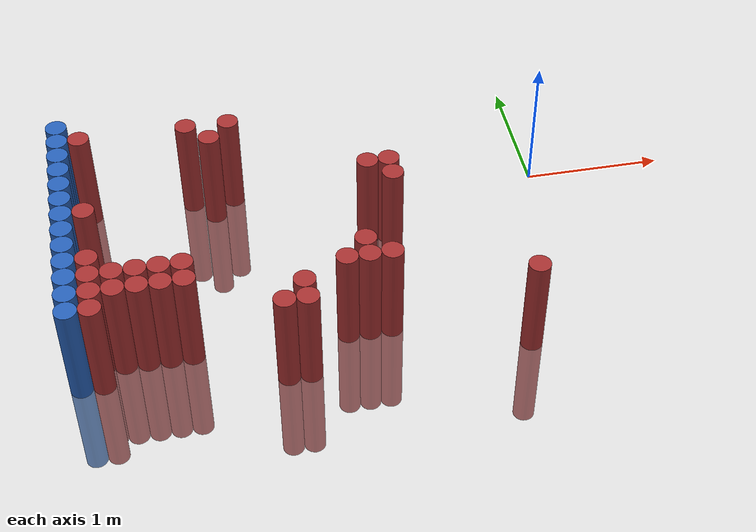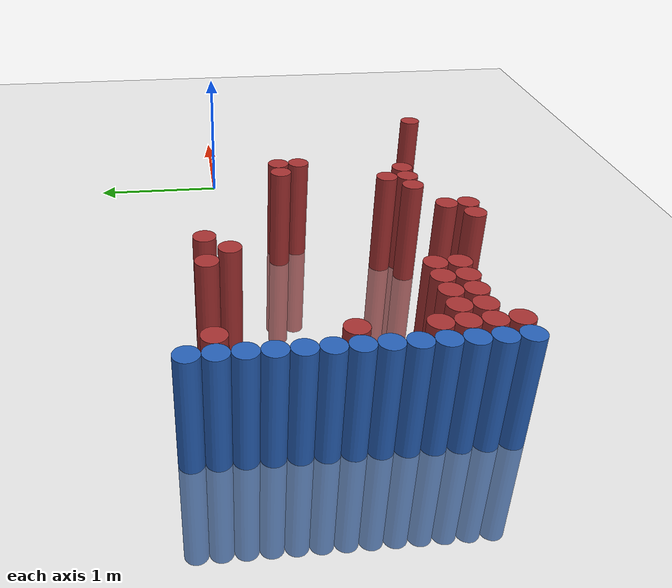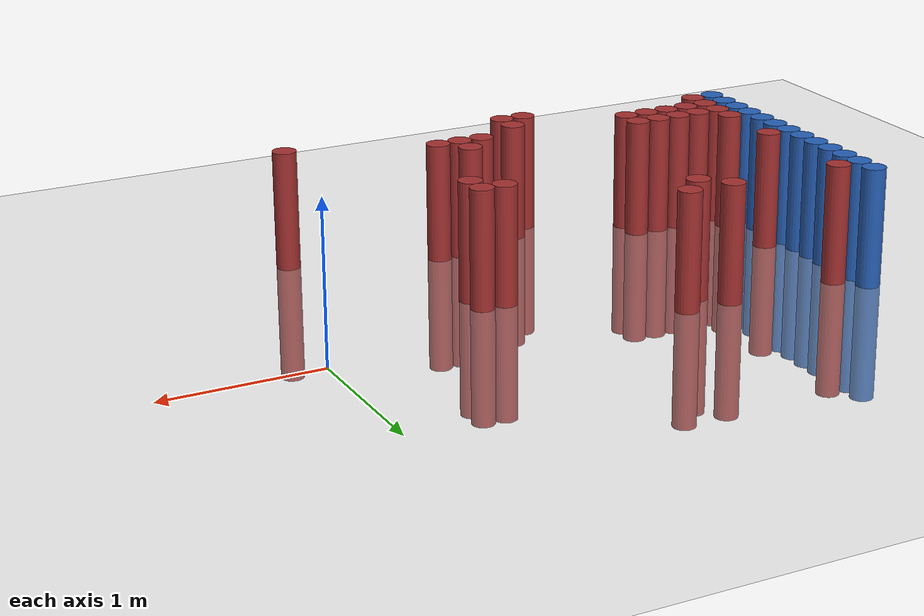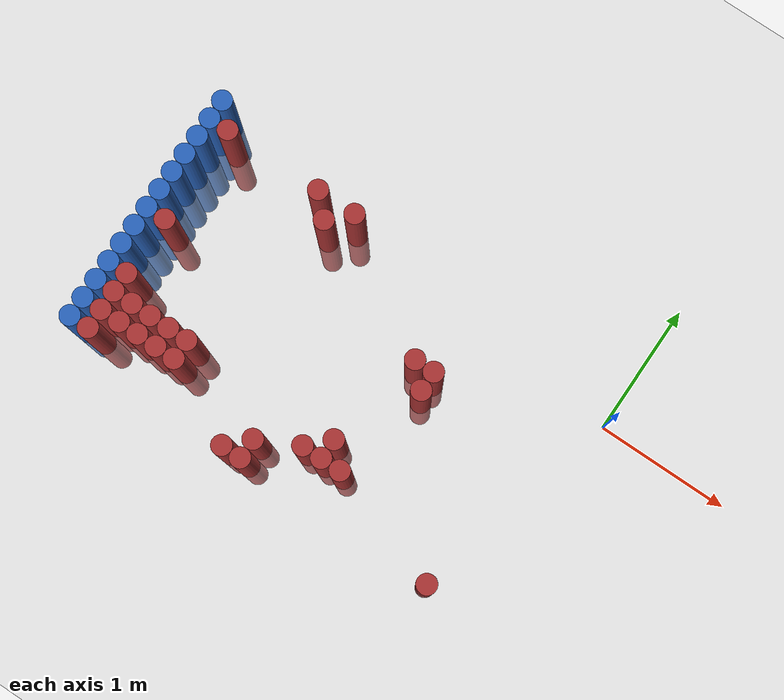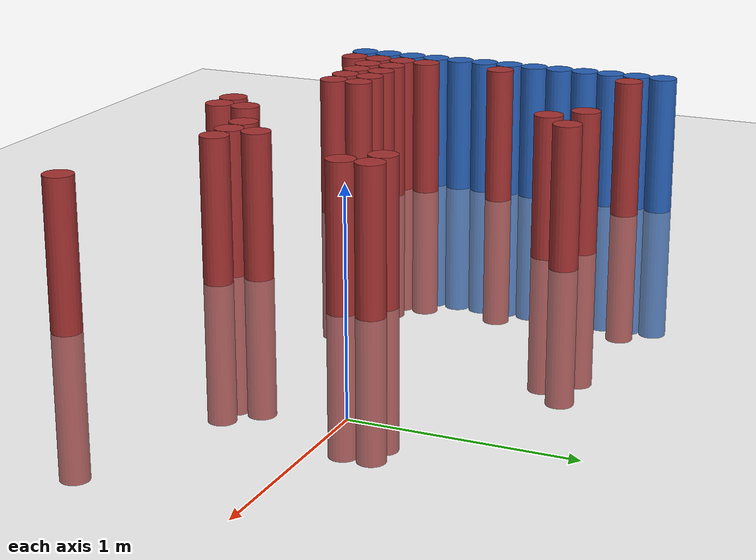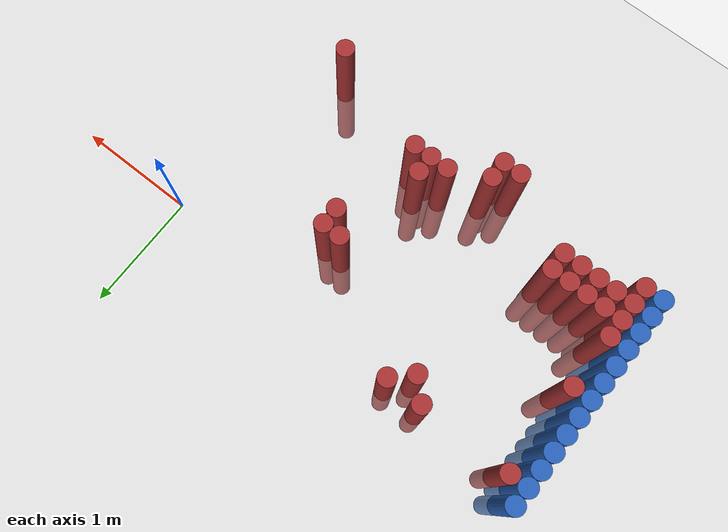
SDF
<sdf version="1.6">
 <world name="default">
  <model name="ground_plane">
   <static>1</static>
   <link name="link">
    <collision name="collision">
     <geometry><plane><normal>0 0 1</normal><size>100 100</size></plane></geometry>
     <surface><friction><ode><mu>100</mu><mu2>50</mu2></ode></friction></surface>
    </collision>
    <visual name="visual">
     <cast_shadows>0</cast_shadows>
     <geometry><plane><normal>0 0 1</normal><size>100 100</size></plane></geometry>
     <material>
      <script><uri>file://media/materials/scripts/gazebo.material</uri><name>Gazebo/Grey</name></script>
     </material>
    </visual>
   </link>
  </model>
  <model name="unit_cylinder_95">
   <static>1</static>
   <pose>-3.425000 -1.475000 0.000000 0.000000 0.000000 0.000000</pose>
   <link name="link">
    <inertial>
     <mass>1</mass>
     <inertia><ixx>0.145833</ixx><ixy>0</ixy><ixz>0</ixz><iyy>0.145833</iyy><iyz>0</iyz><izz>0.125</izz></inertia>
    </inertial>
    <collision name="collision">
     <geometry><cylinder><radius>0.075000</radius><length>1.5</length></cylinder></geometry>
    </collision>
    <visual name="visual">
     <geometry><cylinder><radius>0.075000</radius><length>1.5</length></cylinder></geometry>
     <material>
      <ambient>0.152000 0.379000 0.720000 1</ambient>
      <diffuse>0.152000 0.379000 0.720000 1</diffuse>
     </material>
     <material>
      <script><name>Gazebo/Grey</name><uri>file://media/materials/scripts/gazebo.material</uri></script>
     </material>
    </visual>
   </link>
  </model>
  <model name="unit_cylinder_97">
   <static>1</static>
   <pose>-3.425000 -1.325000 0.000000 0.000000 0.000000 0.000000</pose>
   <link name="link">
    <inertial>
     <mass>1</mass>
     <inertia><ixx>0.145833</ixx><ixy>0</ixy><ixz>0</ixz><iyy>0.145833</iyy><iyz>0</iyz><izz>0.125</izz></inertia>
    </inertial>
    <collision name="collision">
     <geometry><cylinder><radius>0.075000</radius><length>1.5</length></cylinder></geometry>
    </collision>
    <visual name="visual">
     <geometry><cylinder><radius>0.075000</radius><length>1.5</length></cylinder></geometry>
     <material>
      <ambient>0.152000 0.379000 0.720000 1</ambient>
      <diffuse>0.152000 0.379000 0.720000 1</diffuse>
     </material>
     <material>
      <script><name>Gazebo/Grey</name><uri>file://media/materials/scripts/gazebo.material</uri></script>
     </material>
    </visual>
   </link>
  </model>
  <model name="unit_cylinder_99">
   <static>1</static>
   <pose>-3.425000 -1.175000 0.000000 0.000000 0.000000 0.000000</pose>
   <link name="link">
    <inertial>
     <mass>1</mass>
     <inertia><ixx>0.145833</ixx><ixy>0</ixy><ixz>0</ixz><iyy>0.145833</iyy><iyz>0</iyz><izz>0.125</izz></inertia>
    </inertial>
    <collision name="collision">
     <geometry><cylinder><radius>0.075000</radius><length>1.5</length></cylinder></geometry>
    </collision>
    <visual name="visual">
     <geometry><cylinder><radius>0.075000</radius><length>1.5</length></cylinder></geometry>
     <material>
      <ambient>0.152000 0.379000 0.720000 1</ambient>
      <diffuse>0.152000 0.379000 0.720000 1</diffuse>
     </material>
     <material>
      <script><name>Gazebo/Grey</name><uri>file://media/materials/scripts/gazebo.material</uri></script>
     </material>
    </visual>
   </link>
  </model>
  <model name="unit_cylinder_101">
   <static>1</static>
   <pose>-3.425000 -1.025000 0.000000 0.000000 0.000000 0.000000</pose>
   <link name="link">
    <inertial>
     <mass>1</mass>
     <inertia><ixx>0.145833</ixx><ixy>0</ixy><ixz>0</ixz><iyy>0.145833</iyy><iyz>0</iyz><izz>0.125</izz></inertia>
    </inertial>
    <collision name="collision">
     <geometry><cylinder><radius>0.075000</radius><length>1.5</length></cylinder></geometry>
    </collision>
    <visual name="visual">
     <geometry><cylinder><radius>0.075000</radius><length>1.5</length></cylinder></geometry>
     <material>
      <ambient>0.152000 0.379000 0.720000 1</ambient>
      <diffuse>0.152000 0.379000 0.720000 1</diffuse>
     </material>
     <material>
      <script><name>Gazebo/Grey</name><uri>file://media/materials/scripts/gazebo.material</uri></script>
     </material>
    </visual>
   </link>
  </model>
  <model name="unit_cylinder_103">
   <static>1</static>
   <pose>-3.425000 -0.875000 0.000000 0.000000 0.000000 0.000000</pose>
   <link name="link">
    <inertial>
     <mass>1</mass>
     <inertia><ixx>0.145833</ixx><ixy>0</ixy><ixz>0</ixz><iyy>0.145833</iyy><iyz>0</iyz><izz>0.125</izz></inertia>
    </inertial>
    <collision name="collision">
     <geometry><cylinder><radius>0.075000</radius><length>1.5</length></cylinder></geometry>
    </collision>
    <visual name="visual">
     <geometry><cylinder><radius>0.075000</radius><length>1.5</length></cylinder></geometry>
     <material>
      <ambient>0.152000 0.379000 0.720000 1</ambient>
      <diffuse>0.152000 0.379000 0.720000 1</diffuse>
     </material>
     <material>
      <script><name>Gazebo/Grey</name><uri>file://media/materials/scripts/gazebo.material</uri></script>
     </material>
    </visual>
   </link>
  </model>
  <model name="unit_cylinder_105">
   <static>1</static>
   <pose>-3.425000 -0.725000 0.000000 0.000000 0.000000 0.000000</pose>
   <link name="link">
    <inertial>
     <mass>1</mass>
     <inertia><ixx>0.145833</ixx><ixy>0</ixy><ixz>0</ixz><iyy>0.145833</iyy><iyz>0</iyz><izz>0.125</izz></inertia>
    </inertial>
    <collision name="collision">
     <geometry><cylinder><radius>0.075000</radius><length>1.5</length></cylinder></geometry>
    </collision>
    <visual name="visual">
     <geometry><cylinder><radius>0.075000</radius><length>1.5</length></cylinder></geometry>
     <material>
      <ambient>0.152000 0.379000 0.720000 1</ambient>
      <diffuse>0.152000 0.379000 0.720000 1</diffuse>
     </material>
     <material>
      <script><name>Gazebo/Grey</name><uri>file://media/materials/scripts/gazebo.material</uri></script>
     </material>
    </visual>
   </link>
  </model>
  <model name="unit_cylinder_107">
   <static>1</static>
   <pose>-3.425000 -0.575000 0.000000 0.000000 0.000000 0.000000</pose>
   <link name="link">
    <inertial>
     <mass>1</mass>
     <inertia><ixx>0.145833</ixx><ixy>0</ixy><ixz>0</ixz><iyy>0.145833</iyy><iyz>0</iyz><izz>0.125</izz></inertia>
    </inertial>
    <collision name="collision">
     <geometry><cylinder><radius>0.075000</radius><length>1.5</length></cylinder></geometry>
    </collision>
    <visual name="visual">
     <geometry><cylinder><radius>0.075000</radius><length>1.5</length></cylinder></geometry>
     <material>
      <ambient>0.152000 0.379000 0.720000 1</ambient>
      <diffuse>0.152000 0.379000 0.720000 1</diffuse>
     </material>
     <material>
      <script><name>Gazebo/Grey</name><uri>file://media/materials/scripts/gazebo.material</uri></script>
     </material>
    </visual>
   </link>
  </model>
  <model name="unit_cylinder_109">
   <static>1</static>
   <pose>-3.425000 -0.425000 0.000000 0.000000 0.000000 0.000000</pose>
   <link name="link">
    <inertial>
     <mass>1</mass>
     <inertia><ixx>0.145833</ixx><ixy>0</ixy><ixz>0</ixz><iyy>0.145833</iyy><iyz>0</iyz><izz>0.125</izz></inertia>
    </inertial>
    <collision name="collision">
     <geometry><cylinder><radius>0.075000</radius><length>1.5</length></cylinder></geometry>
    </collision>
    <visual name="visual">
     <geometry><cylinder><radius>0.075000</radius><length>1.5</length></cylinder></geometry>
     <material>
      <ambient>0.152000 0.379000 0.720000 1</ambient>
      <diffuse>0.152000 0.379000 0.720000 1</diffuse>
     </material>
     <material>
      <script><name>Gazebo/Grey</name><uri>file://media/materials/scripts/gazebo.material</uri></script>
     </material>
    </visual>
   </link>
  </model>
  <model name="unit_cylinder_111">
   <static>1</static>
   <pose>-3.425000 -0.275000 0.000000 0.000000 0.000000 0.000000</pose>
   <link name="link">
    <inertial>
     <mass>1</mass>
     <inertia><ixx>0.145833</ixx><ixy>0</ixy><ixz>0</ixz><iyy>0.145833</iyy><iyz>0</iyz><izz>0.125</izz></inertia>
    </inertial>
    <collision name="collision">
     <geometry><cylinder><radius>0.075000</radius><length>1.5</length></cylinder></geometry>
    </collision>
    <visual name="visual">
     <geometry><cylinder><radius>0.075000</radius><length>1.5</length></cylinder></geometry>
     <material>
      <ambient>0.152000 0.379000 0.720000 1</ambient>
      <diffuse>0.152000 0.379000 0.720000 1</diffuse>
     </material>
     <material>
      <script><name>Gazebo/Grey</name><uri>file://media/materials/scripts/gazebo.material</uri></script>
     </material>
    </visual>
   </link>
  </model>
  <model name="unit_cylinder_113">
   <static>1</static>
   <pose>-3.425000 -0.125000 0.000000 0.000000 0.000000 0.000000</pose>
   <link name="link">
    <inertial>
     <mass>1</mass>
     <inertia><ixx>0.145833</ixx><ixy>0</ixy><ixz>0</ixz><iyy>0.145833</iyy><iyz>0</iyz><izz>0.125</izz></inertia>
    </inertial>
    <collision name="collision">
     <geometry><cylinder><radius>0.075000</radius><length>1.5</length></cylinder></geometry>
    </collision>
    <visual name="visual">
     <geometry><cylinder><radius>0.075000</radius><length>1.5</length></cylinder></geometry>
     <material>
      <ambient>0.152000 0.379000 0.720000 1</ambient>
      <diffuse>0.152000 0.379000 0.720000 1</diffuse>
     </material>
     <material>
      <script><name>Gazebo/Grey</name><uri>file://media/materials/scripts/gazebo.material</uri></script>
     </material>
    </visual>
   </link>
  </model>
  <model name="unit_cylinder_115">
   <static>1</static>
   <pose>-3.425000 0.025000 0.000000 0.000000 0.000000 0.000000</pose>
   <link name="link">
    <inertial>
     <mass>1</mass>
     <inertia><ixx>0.145833</ixx><ixy>0</ixy><ixz>0</ixz><iyy>0.145833</iyy><iyz>0</iyz><izz>0.125</izz></inertia>
    </inertial>
    <collision name="collision">
     <geometry><cylinder><radius>0.075000</radius><length>1.5</length></cylinder></geometry>
    </collision>
    <visual name="visual">
     <geometry><cylinder><radius>0.075000</radius><length>1.5</length></cylinder></geometry>
     <material>
      <ambient>0.152000 0.379000 0.720000 1</ambient>
      <diffuse>0.152000 0.379000 0.720000 1</diffuse>
     </material>
     <material>
      <script><name>Gazebo/Grey</name><uri>file://media/materials/scripts/gazebo.material</uri></script>
     </material>
    </visual>
   </link>
  </model>
  <model name="unit_cylinder_117">
   <static>1</static>
   <pose>-3.425000 0.175000 0.000000 0.000000 0.000000 0.000000</pose>
   <link name="link">
    <inertial>
     <mass>1</mass>
     <inertia><ixx>0.145833</ixx><ixy>0</ixy><ixz>0</ixz><iyy>0.145833</iyy><iyz>0</iyz><izz>0.125</izz></inertia>
    </inertial>
    <collision name="collision">
     <geometry><cylinder><radius>0.075000</radius><length>1.5</length></cylinder></geometry>
    </collision>
    <visual name="visual">
     <geometry><cylinder><radius>0.075000</radius><length>1.5</length></cylinder></geometry>
     <material>
      <ambient>0.152000 0.379000 0.720000 1</ambient>
      <diffuse>0.152000 0.379000 0.720000 1</diffuse>
     </material>
     <material>
      <script><name>Gazebo/Grey</name><uri>file://media/materials/scripts/gazebo.material</uri></script>
     </material>
    </visual>
   </link>
  </model>
  <model name="unit_cylinder_119">
   <static>1</static>
   <pose>-3.425000 0.325000 0.000000 0.000000 0.000000 0.000000</pose>
   <link name="link">
    <inertial>
     <mass>1</mass>
     <inertia><ixx>0.145833</ixx><ixy>0</ixy><ixz>0</ixz><iyy>0.145833</iyy><iyz>0</iyz><izz>0.125</izz></inertia>
    </inertial>
    <collision name="collision">
     <geometry><cylinder><radius>0.075000</radius><length>1.5</length></cylinder></geometry>
    </collision>
    <visual name="visual">
     <geometry><cylinder><radius>0.075000</radius><length>1.5</length></cylinder></geometry>
     <material>
      <ambient>0.152000 0.379000 0.720000 1</ambient>
      <diffuse>0.152000 0.379000 0.720000 1</diffuse>
     </material>
     <material>
      <script><name>Gazebo/Grey</name><uri>file://media/materials/scripts/gazebo.material</uri></script>
     </material>
    </visual>
   </link>
  </model>
  <model name="unit_cylinder_211">
   <static>1</static>
   <pose>-3.425000 -1.475000 0.000000 0.000000 0.000000 0.000000</pose>
   <link name="link">
    <inertial>
     <mass>1</mass>
     <inertia><ixx>0.145833</ixx><ixy>0</ixy><ixz>0</ixz><iyy>0.145833</iyy><iyz>0</iyz><izz>0.125</izz></inertia>
    </inertial>
    <collision name="collision">
     <geometry><cylinder><radius>0.075000</radius><length>1.5</length></cylinder></geometry>
    </collision>
    <visual name="visual">
     <geometry><cylinder><radius>0.075000</radius><length>1.5</length></cylinder></geometry>
     <material>
      <ambient>0.152000 0.379000 0.720000 1</ambient>
      <diffuse>0.152000 0.379000 0.720000 1</diffuse>
     </material>
     <material>
      <script><name>Gazebo/Grey</name><uri>file://media/materials/scripts/gazebo.material</uri></script>
     </material>
    </visual>
   </link>
  </model>
  <model name="unit_cylinder_212">
   <static>1</static>
   <pose>-3.425000 -1.325000 0.000000 0.000000 0.000000 0.000000</pose>
   <link name="link">
    <inertial>
     <mass>1</mass>
     <inertia><ixx>0.145833</ixx><ixy>0</ixy><ixz>0</ixz><iyy>0.145833</iyy><iyz>0</iyz><izz>0.125</izz></inertia>
    </inertial>
    <collision name="collision">
     <geometry><cylinder><radius>0.075000</radius><length>1.5</length></cylinder></geometry>
    </collision>
    <visual name="visual">
     <geometry><cylinder><radius>0.075000</radius><length>1.5</length></cylinder></geometry>
     <material>
      <ambient>0.152000 0.379000 0.720000 1</ambient>
      <diffuse>0.152000 0.379000 0.720000 1</diffuse>
     </material>
     <material>
      <script><name>Gazebo/Grey</name><uri>file://media/materials/scripts/gazebo.material</uri></script>
     </material>
    </visual>
   </link>
  </model>
  <model name="unit_cylinder_213">
   <static>1</static>
   <pose>-3.425000 -1.175000 0.000000 0.000000 0.000000 0.000000</pose>
   <link name="link">
    <inertial>
     <mass>1</mass>
     <inertia><ixx>0.145833</ixx><ixy>0</ixy><ixz>0</ixz><iyy>0.145833</iyy><iyz>0</iyz><izz>0.125</izz></inertia>
    </inertial>
    <collision name="collision">
     <geometry><cylinder><radius>0.075000</radius><length>1.5</length></cylinder></geometry>
    </collision>
    <visual name="visual">
     <geometry><cylinder><radius>0.075000</radius><length>1.5</length></cylinder></geometry>
     <material>
      <ambient>0.152000 0.379000 0.720000 1</ambient>
      <diffuse>0.152000 0.379000 0.720000 1</diffuse>
     </material>
     <material>
      <script><name>Gazebo/Grey</name><uri>file://media/materials/scripts/gazebo.material</uri></script>
     </material>
    </visual>
   </link>
  </model>
  <model name="unit_cylinder_214">
   <static>1</static>
   <pose>-3.425000 -1.025000 0.000000 0.000000 0.000000 0.000000</pose>
   <link name="link">
    <inertial>
     <mass>1</mass>
     <inertia><ixx>0.145833</ixx><ixy>0</ixy><ixz>0</ixz><iyy>0.145833</iyy><iyz>0</iyz><izz>0.125</izz></inertia>
    </inertial>
    <collision name="collision">
     <geometry><cylinder><radius>0.075000</radius><length>1.5</length></cylinder></geometry>
    </collision>
    <visual name="visual">
     <geometry><cylinder><radius>0.075000</radius><length>1.5</length></cylinder></geometry>
     <material>
      <ambient>0.152000 0.379000 0.720000 1</ambient>
      <diffuse>0.152000 0.379000 0.720000 1</diffuse>
     </material>
     <material>
      <script><name>Gazebo/Grey</name><uri>file://media/materials/scripts/gazebo.material</uri></script>
     </material>
    </visual>
   </link>
  </model>
  <model name="unit_cylinder_215">
   <static>1</static>
   <pose>-3.425000 -0.875000 0.000000 0.000000 0.000000 0.000000</pose>
   <link name="link">
    <inertial>
     <mass>1</mass>
     <inertia><ixx>0.145833</ixx><ixy>0</ixy><ixz>0</ixz><iyy>0.145833</iyy><iyz>0</iyz><izz>0.125</izz></inertia>
    </inertial>
    <collision name="collision">
     <geometry><cylinder><radius>0.075000</radius><length>1.5</length></cylinder></geometry>
    </collision>
    <visual name="visual">
     <geometry><cylinder><radius>0.075000</radius><length>1.5</length></cylinder></geometry>
     <material>
      <ambient>0.152000 0.379000 0.720000 1</ambient>
      <diffuse>0.152000 0.379000 0.720000 1</diffuse>
     </material>
     <material>
      <script><name>Gazebo/Grey</name><uri>file://media/materials/scripts/gazebo.material</uri></script>
     </material>
    </visual>
   </link>
  </model>
  <model name="unit_cylinder_216">
   <static>1</static>
   <pose>-3.425000 -0.725000 0.000000 0.000000 0.000000 0.000000</pose>
   <link name="link">
    <inertial>
     <mass>1</mass>
     <inertia><ixx>0.145833</ixx><ixy>0</ixy><ixz>0</ixz><iyy>0.145833</iyy><iyz>0</iyz><izz>0.125</izz></inertia>
    </inertial>
    <collision name="collision">
     <geometry><cylinder><radius>0.075000</radius><length>1.5</length></cylinder></geometry>
    </collision>
    <visual name="visual">
     <geometry><cylinder><radius>0.075000</radius><length>1.5</length></cylinder></geometry>
     <material>
      <ambient>0.152000 0.379000 0.720000 1</ambient>
      <diffuse>0.152000 0.379000 0.720000 1</diffuse>
     </material>
     <material>
      <script><name>Gazebo/Grey</name><uri>file://media/materials/scripts/gazebo.material</uri></script>
     </material>
    </visual>
   </link>
  </model>
  <model name="unit_cylinder_217">
   <static>1</static>
   <pose>-3.425000 -0.575000 0.000000 0.000000 0.000000 0.000000</pose>
   <link name="link">
    <inertial>
     <mass>1</mass>
     <inertia><ixx>0.145833</ixx><ixy>0</ixy><ixz>0</ixz><iyy>0.145833</iyy><iyz>0</iyz><izz>0.125</izz></inertia>
    </inertial>
    <collision name="collision">
     <geometry><cylinder><radius>0.075000</radius><length>1.5</length></cylinder></geometry>
    </collision>
    <visual name="visual">
     <geometry><cylinder><radius>0.075000</radius><length>1.5</length></cylinder></geometry>
     <material>
      <ambient>0.152000 0.379000 0.720000 1</ambient>
      <diffuse>0.152000 0.379000 0.720000 1</diffuse>
     </material>
     <material>
      <script><name>Gazebo/Grey</name><uri>file://media/materials/scripts/gazebo.material</uri></script>
     </material>
    </visual>
   </link>
  </model>
  <model name="unit_cylinder_218">
   <static>1</static>
   <pose>-3.425000 -0.425000 0.000000 0.000000 0.000000 0.000000</pose>
   <link name="link">
    <inertial>
     <mass>1</mass>
     <inertia><ixx>0.145833</ixx><ixy>0</ixy><ixz>0</ixz><iyy>0.145833</iyy><iyz>0</iyz><izz>0.125</izz></inertia>
    </inertial>
    <collision name="collision">
     <geometry><cylinder><radius>0.075000</radius><length>1.5</length></cylinder></geometry>
    </collision>
    <visual name="visual">
     <geometry><cylinder><radius>0.075000</radius><length>1.5</length></cylinder></geometry>
     <material>
      <ambient>0.152000 0.379000 0.720000 1</ambient>
      <diffuse>0.152000 0.379000 0.720000 1</diffuse>
     </material>
     <material>
      <script><name>Gazebo/Grey</name><uri>file://media/materials/scripts/gazebo.material</uri></script>
     </material>
    </visual>
   </link>
  </model>
  <model name="unit_cylinder_219">
   <static>1</static>
   <pose>-3.425000 -0.275000 0.000000 0.000000 0.000000 0.000000</pose>
   <link name="link">
    <inertial>
     <mass>1</mass>
     <inertia><ixx>0.145833</ixx><ixy>0</ixy><ixz>0</ixz><iyy>0.145833</iyy><iyz>0</iyz><izz>0.125</izz></inertia>
    </inertial>
    <collision name="collision">
     <geometry><cylinder><radius>0.075000</radius><length>1.5</length></cylinder></geometry>
    </collision>
    <visual name="visual">
     <geometry><cylinder><radius>0.075000</radius><length>1.5</length></cylinder></geometry>
     <material>
      <ambient>0.152000 0.379000 0.720000 1</ambient>
      <diffuse>0.152000 0.379000 0.720000 1</diffuse>
     </material>
     <material>
      <script><name>Gazebo/Grey</name><uri>file://media/materials/scripts/gazebo.material</uri></script>
     </material>
    </visual>
   </link>
  </model>
  <model name="unit_cylinder_220">
   <static>1</static>
   <pose>-3.425000 -0.125000 0.000000 0.000000 0.000000 0.000000</pose>
   <link name="link">
    <inertial>
     <mass>1</mass>
     <inertia><ixx>0.145833</ixx><ixy>0</ixy><ixz>0</ixz><iyy>0.145833</iyy><iyz>0</iyz><izz>0.125</izz></inertia>
    </inertial>
    <collision name="collision">
     <geometry><cylinder><radius>0.075000</radius><length>1.5</length></cylinder></geometry>
    </collision>
    <visual name="visual">
     <geometry><cylinder><radius>0.075000</radius><length>1.5</length></cylinder></geometry>
     <material>
      <ambient>0.152000 0.379000 0.720000 1</ambient>
      <diffuse>0.152000 0.379000 0.720000 1</diffuse>
     </material>
     <material>
      <script><name>Gazebo/Grey</name><uri>file://media/materials/scripts/gazebo.material</uri></script>
     </material>
    </visual>
   </link>
  </model>
  <model name="unit_cylinder_221">
   <static>1</static>
   <pose>-3.425000 0.025000 0.000000 0.000000 0.000000 0.000000</pose>
   <link name="link">
    <inertial>
     <mass>1</mass>
     <inertia><ixx>0.145833</ixx><ixy>0</ixy><ixz>0</ixz><iyy>0.145833</iyy><iyz>0</iyz><izz>0.125</izz></inertia>
    </inertial>
    <collision name="collision">
     <geometry><cylinder><radius>0.075000</radius><length>1.5</length></cylinder></geometry>
    </collision>
    <visual name="visual">
     <geometry><cylinder><radius>0.075000</radius><length>1.5</length></cylinder></geometry>
     <material>
      <ambient>0.152000 0.379000 0.720000 1</ambient>
      <diffuse>0.152000 0.379000 0.720000 1</diffuse>
     </material>
     <material>
      <script><name>Gazebo/Grey</name><uri>file://media/materials/scripts/gazebo.material</uri></script>
     </material>
    </visual>
   </link>
  </model>
  <model name="unit_cylinder_222">
   <static>1</static>
   <pose>-3.425000 0.175000 0.000000 0.000000 0.000000 0.000000</pose>
   <link name="link">
    <inertial>
     <mass>1</mass>
     <inertia><ixx>0.145833</ixx><ixy>0</ixy><ixz>0</ixz><iyy>0.145833</iyy><iyz>0</iyz><izz>0.125</izz></inertia>
    </inertial>
    <collision name="collision">
     <geometry><cylinder><radius>0.075000</radius><length>1.5</length></cylinder></geometry>
    </collision>
    <visual name="visual">
     <geometry><cylinder><radius>0.075000</radius><length>1.5</length></cylinder></geometry>
     <material>
      <ambient>0.152000 0.379000 0.720000 1</ambient>
      <diffuse>0.152000 0.379000 0.720000 1</diffuse>
     </material>
     <material>
      <script><name>Gazebo/Grey</name><uri>file://media/materials/scripts/gazebo.material</uri></script>
     </material>
    </visual>
   </link>
  </model>
  <model name="unit_cylinder_258">
   <static>1</static>
   <pose>-3.275000 -1.475000 0.000000 0.000000 0.000000 0.000000</pose>
   <link name="link">
    <inertial>
     <mass>1</mass>
     <inertia><ixx>0.145833</ixx><ixy>0</ixy><ixz>0</ixz><iyy>0.145833</iyy><iyz>0</iyz><izz>0.125</izz></inertia>
    </inertial>
    <collision name="collision">
     <geometry><cylinder><radius>0.075000</radius><length>1.5</length></cylinder></geometry>
    </collision>
    <visual name="visual">
     <geometry><cylinder><radius>0.075000</radius><length>1.5</length></cylinder></geometry>
     <material>
      <ambient>0.648000 0.192000 0.192000 1</ambient>
      <diffuse>0.648000 0.192000 0.192000 1</diffuse>
     </material>
     <material>
      <script><name>Gazebo/Grey</name><uri>file://media/materials/scripts/gazebo.material</uri></script>
     </material>
    </visual>
   </link>
  </model>
  <model name="unit_cylinder_259">
   <static>1</static>
   <pose>-3.275000 -1.325000 0.000000 0.000000 0.000000 0.000000</pose>
   <link name="link">
    <inertial>
     <mass>1</mass>
     <inertia><ixx>0.145833</ixx><ixy>0</ixy><ixz>0</ixz><iyy>0.145833</iyy><iyz>0</iyz><izz>0.125</izz></inertia>
    </inertial>
    <collision name="collision">
     <geometry><cylinder><radius>0.075000</radius><length>1.5</length></cylinder></geometry>
    </collision>
    <visual name="visual">
     <geometry><cylinder><radius>0.075000</radius><length>1.5</length></cylinder></geometry>
     <material>
      <ambient>0.648000 0.192000 0.192000 1</ambient>
      <diffuse>0.648000 0.192000 0.192000 1</diffuse>
     </material>
     <material>
      <script><name>Gazebo/Grey</name><uri>file://media/materials/scripts/gazebo.material</uri></script>
     </material>
    </visual>
   </link>
  </model>
  <model name="unit_cylinder_260">
   <static>1</static>
   <pose>-3.275000 -1.175000 0.000000 0.000000 0.000000 0.000000</pose>
   <link name="link">
    <inertial>
     <mass>1</mass>
     <inertia><ixx>0.145833</ixx><ixy>0</ixy><ixz>0</ixz><iyy>0.145833</iyy><iyz>0</iyz><izz>0.125</izz></inertia>
    </inertial>
    <collision name="collision">
     <geometry><cylinder><radius>0.075000</radius><length>1.5</length></cylinder></geometry>
    </collision>
    <visual name="visual">
     <geometry><cylinder><radius>0.075000</radius><length>1.5</length></cylinder></geometry>
     <material>
      <ambient>0.648000 0.192000 0.192000 1</ambient>
      <diffuse>0.648000 0.192000 0.192000 1</diffuse>
     </material>
     <material>
      <script><name>Gazebo/Grey</name><uri>file://media/materials/scripts/gazebo.material</uri></script>
     </material>
    </visual>
   </link>
  </model>
  <model name="unit_cylinder_261">
   <static>1</static>
   <pose>-3.275000 -1.025000 0.000000 0.000000 0.000000 0.000000</pose>
   <link name="link">
    <inertial>
     <mass>1</mass>
     <inertia><ixx>0.145833</ixx><ixy>0</ixy><ixz>0</ixz><iyy>0.145833</iyy><iyz>0</iyz><izz>0.125</izz></inertia>
    </inertial>
    <collision name="collision">
     <geometry><cylinder><radius>0.075000</radius><length>1.5</length></cylinder></geometry>
    </collision>
    <visual name="visual">
     <geometry><cylinder><radius>0.075000</radius><length>1.5</length></cylinder></geometry>
     <material>
      <ambient>0.648000 0.192000 0.192000 1</ambient>
      <diffuse>0.648000 0.192000 0.192000 1</diffuse>
     </material>
     <material>
      <script><name>Gazebo/Grey</name><uri>file://media/materials/scripts/gazebo.material</uri></script>
     </material>
    </visual>
   </link>
  </model>
  <model name="unit_cylinder_262">
   <static>1</static>
   <pose>-3.275000 -0.575000 0.000000 0.000000 0.000000 0.000000</pose>
   <link name="link">
    <inertial>
     <mass>1</mass>
     <inertia><ixx>0.145833</ixx><ixy>0</ixy><ixz>0</ixz><iyy>0.145833</iyy><iyz>0</iyz><izz>0.125</izz></inertia>
    </inertial>
    <collision name="collision">
     <geometry><cylinder><radius>0.075000</radius><length>1.5</length></cylinder></geometry>
    </collision>
    <visual name="visual">
     <geometry><cylinder><radius>0.075000</radius><length>1.5</length></cylinder></geometry>
     <material>
      <ambient>0.648000 0.192000 0.192000 1</ambient>
      <diffuse>0.648000 0.192000 0.192000 1</diffuse>
     </material>
     <material>
      <script><name>Gazebo/Grey</name><uri>file://media/materials/scripts/gazebo.material</uri></script>
     </material>
    </visual>
   </link>
  </model>
  <model name="unit_cylinder_263">
   <static>1</static>
   <pose>-3.275000 0.175000 0.000000 0.000000 0.000000 0.000000</pose>
   <link name="link">
    <inertial>
     <mass>1</mass>
     <inertia><ixx>0.145833</ixx><ixy>0</ixy><ixz>0</ixz><iyy>0.145833</iyy><iyz>0</iyz><izz>0.125</izz></inertia>
    </inertial>
    <collision name="collision">
     <geometry><cylinder><radius>0.075000</radius><length>1.5</length></cylinder></geometry>
    </collision>
    <visual name="visual">
     <geometry><cylinder><radius>0.075000</radius><length>1.5</length></cylinder></geometry>
     <material>
      <ambient>0.648000 0.192000 0.192000 1</ambient>
      <diffuse>0.648000 0.192000 0.192000 1</diffuse>
     </material>
     <material>
      <script><name>Gazebo/Grey</name><uri>file://media/materials/scripts/gazebo.material</uri></script>
     </material>
    </visual>
   </link>
  </model>
  <model name="unit_cylinder_284">
   <static>1</static>
   <pose>-3.125000 -1.325000 0.000000 0.000000 0.000000 0.000000</pose>
   <link name="link">
    <inertial>
     <mass>1</mass>
     <inertia><ixx>0.145833</ixx><ixy>0</ixy><ixz>0</ixz><iyy>0.145833</iyy><iyz>0</iyz><izz>0.125</izz></inertia>
    </inertial>
    <collision name="collision">
     <geometry><cylinder><radius>0.075000</radius><length>1.5</length></cylinder></geometry>
    </collision>
    <visual name="visual">
     <geometry><cylinder><radius>0.075000</radius><length>1.5</length></cylinder></geometry>
     <material>
      <ambient>0.648000 0.192000 0.192000 1</ambient>
      <diffuse>0.648000 0.192000 0.192000 1</diffuse>
     </material>
     <material>
      <script><name>Gazebo/Grey</name><uri>file://media/materials/scripts/gazebo.material</uri></script>
     </material>
    </visual>
   </link>
  </model>
  <model name="unit_cylinder_285">
   <static>1</static>
   <pose>-3.125000 -1.175000 0.000000 0.000000 0.000000 0.000000</pose>
   <link name="link">
    <inertial>
     <mass>1</mass>
     <inertia><ixx>0.145833</ixx><ixy>0</ixy><ixz>0</ixz><iyy>0.145833</iyy><iyz>0</iyz><izz>0.125</izz></inertia>
    </inertial>
    <collision name="collision">
     <geometry><cylinder><radius>0.075000</radius><length>1.5</length></cylinder></geometry>
    </collision>
    <visual name="visual">
     <geometry><cylinder><radius>0.075000</radius><length>1.5</length></cylinder></geometry>
     <material>
      <ambient>0.648000 0.192000 0.192000 1</ambient>
      <diffuse>0.648000 0.192000 0.192000 1</diffuse>
     </material>
     <material>
      <script><name>Gazebo/Grey</name><uri>file://media/materials/scripts/gazebo.material</uri></script>
     </material>
    </visual>
   </link>
  </model>
  <model name="unit_cylinder_296">
   <static>1</static>
   <pose>-2.975000 -1.325000 0.000000 0.000000 0.000000 0.000000</pose>
   <link name="link">
    <inertial>
     <mass>1</mass>
     <inertia><ixx>0.145833</ixx><ixy>0</ixy><ixz>0</ixz><iyy>0.145833</iyy><iyz>0</iyz><izz>0.125</izz></inertia>
    </inertial>
    <collision name="collision">
     <geometry><cylinder><radius>0.075000</radius><length>1.5</length></cylinder></geometry>
    </collision>
    <visual name="visual">
     <geometry><cylinder><radius>0.075000</radius><length>1.5</length></cylinder></geometry>
     <material>
      <ambient>0.648000 0.192000 0.192000 1</ambient>
      <diffuse>0.648000 0.192000 0.192000 1</diffuse>
     </material>
     <material>
      <script><name>Gazebo/Grey</name><uri>file://media/materials/scripts/gazebo.material</uri></script>
     </material>
    </visual>
   </link>
  </model>
  <model name="unit_cylinder_297">
   <static>1</static>
   <pose>-2.975000 -1.175000 0.000000 0.000000 0.000000 0.000000</pose>
   <link name="link">
    <inertial>
     <mass>1</mass>
     <inertia><ixx>0.145833</ixx><ixy>0</ixy><ixz>0</ixz><iyy>0.145833</iyy><iyz>0</iyz><izz>0.125</izz></inertia>
    </inertial>
    <collision name="collision">
     <geometry><cylinder><radius>0.075000</radius><length>1.5</length></cylinder></geometry>
    </collision>
    <visual name="visual">
     <geometry><cylinder><radius>0.075000</radius><length>1.5</length></cylinder></geometry>
     <material>
      <ambient>0.648000 0.192000 0.192000 1</ambient>
      <diffuse>0.648000 0.192000 0.192000 1</diffuse>
     </material>
     <material>
      <script><name>Gazebo/Grey</name><uri>file://media/materials/scripts/gazebo.material</uri></script>
     </material>
    </visual>
   </link>
  </model>
  <model name="unit_cylinder_301">
   <static>1</static>
   <pose>-2.825000 -1.325000 0.000000 0.000000 0.000000 0.000000</pose>
   <link name="link">
    <inertial>
     <mass>1</mass>
     <inertia><ixx>0.145833</ixx><ixy>0</ixy><ixz>0</ixz><iyy>0.145833</iyy><iyz>0</iyz><izz>0.125</izz></inertia>
    </inertial>
    <collision name="collision">
     <geometry><cylinder><radius>0.075000</radius><length>1.5</length></cylinder></geometry>
    </collision>
    <visual name="visual">
     <geometry><cylinder><radius>0.075000</radius><length>1.5</length></cylinder></geometry>
     <material>
      <ambient>0.648000 0.192000 0.192000 1</ambient>
      <diffuse>0.648000 0.192000 0.192000 1</diffuse>
     </material>
     <material>
      <script><name>Gazebo/Grey</name><uri>file://media/materials/scripts/gazebo.material</uri></script>
     </material>
    </visual>
   </link>
  </model>
  <model name="unit_cylinder_302">
   <static>1</static>
   <pose>-2.825000 -1.175000 0.000000 0.000000 0.000000 0.000000</pose>
   <link name="link">
    <inertial>
     <mass>1</mass>
     <inertia><ixx>0.145833</ixx><ixy>0</ixy><ixz>0</ixz><iyy>0.145833</iyy><iyz>0</iyz><izz>0.125</izz></inertia>
    </inertial>
    <collision name="collision">
     <geometry><cylinder><radius>0.075000</radius><length>1.5</length></cylinder></geometry>
    </collision>
    <visual name="visual">
     <geometry><cylinder><radius>0.075000</radius><length>1.5</length></cylinder></geometry>
     <material>
      <ambient>0.648000 0.192000 0.192000 1</ambient>
      <diffuse>0.648000 0.192000 0.192000 1</diffuse>
     </material>
     <material>
      <script><name>Gazebo/Grey</name><uri>file://media/materials/scripts/gazebo.material</uri></script>
     </material>
    </visual>
   </link>
  </model>
  <model name="unit_cylinder_304">
   <static>1</static>
   <pose>-2.675000 -1.325000 0.000000 0.000000 0.000000 0.000000</pose>
   <link name="link">
    <inertial>
     <mass>1</mass>
     <inertia><ixx>0.145833</ixx><ixy>0</ixy><ixz>0</ixz><iyy>0.145833</iyy><iyz>0</iyz><izz>0.125</izz></inertia>
    </inertial>
    <collision name="collision">
     <geometry><cylinder><radius>0.075000</radius><length>1.5</length></cylinder></geometry>
    </collision>
    <visual name="visual">
     <geometry><cylinder><radius>0.075000</radius><length>1.5</length></cylinder></geometry>
     <material>
      <ambient>0.648000 0.192000 0.192000 1</ambient>
      <diffuse>0.648000 0.192000 0.192000 1</diffuse>
     </material>
     <material>
      <script><name>Gazebo/Grey</name><uri>file://media/materials/scripts/gazebo.material</uri></script>
     </material>
    </visual>
   </link>
  </model>
  <model name="unit_cylinder_305">
   <static>1</static>
   <pose>-2.675000 -1.175000 0.000000 0.000000 0.000000 0.000000</pose>
   <link name="link">
    <inertial>
     <mass>1</mass>
     <inertia><ixx>0.145833</ixx><ixy>0</ixy><ixz>0</ixz><iyy>0.145833</iyy><iyz>0</iyz><izz>0.125</izz></inertia>
    </inertial>
    <collision name="collision">
     <geometry><cylinder><radius>0.075000</radius><length>1.5</length></cylinder></geometry>
    </collision>
    <visual name="visual">
     <geometry><cylinder><radius>0.075000</radius><length>1.5</length></cylinder></geometry>
     <material>
      <ambient>0.648000 0.192000 0.192000 1</ambient>
      <diffuse>0.648000 0.192000 0.192000 1</diffuse>
     </material>
     <material>
      <script><name>Gazebo/Grey</name><uri>file://media/materials/scripts/gazebo.material</uri></script>
     </material>
    </visual>
   </link>
  </model>
  <model name="unit_cylinder_306">
   <static>1</static>
   <pose>-2.525000 0.175000 0.000000 0.000000 0.000000 0.000000</pose>
   <link name="link">
    <inertial>
     <mass>1</mass>
     <inertia><ixx>0.145833</ixx><ixy>0</ixy><ixz>0</ixz><iyy>0.145833</iyy><iyz>0</iyz><izz>0.125</izz></inertia>
    </inertial>
    <collision name="collision">
     <geometry><cylinder><radius>0.075000</radius><length>1.5</length></cylinder></geometry>
    </collision>
    <visual name="visual">
     <geometry><cylinder><radius>0.075000</radius><length>1.5</length></cylinder></geometry>
     <material>
      <ambient>0.648000 0.192000 0.192000 1</ambient>
      <diffuse>0.648000 0.192000 0.192000 1</diffuse>
     </material>
     <material>
      <script><name>Gazebo/Grey</name><uri>file://media/materials/scripts/gazebo.material</uri></script>
     </material>
    </visual>
   </link>
  </model>
  <model name="unit_cylinder_307">
   <static>1</static>
   <pose>-2.375000 0.025000 0.000000 0.000000 0.000000 0.000000</pose>
   <link name="link">
    <inertial>
     <mass>1</mass>
     <inertia><ixx>0.145833</ixx><ixy>0</ixy><ixz>0</ixz><iyy>0.145833</iyy><iyz>0</iyz><izz>0.125</izz></inertia>
    </inertial>
    <collision name="collision">
     <geometry><cylinder><radius>0.075000</radius><length>1.5</length></cylinder></geometry>
    </collision>
    <visual name="visual">
     <geometry><cylinder><radius>0.075000</radius><length>1.5</length></cylinder></geometry>
     <material>
      <ambient>0.648000 0.192000 0.192000 1</ambient>
      <diffuse>0.648000 0.192000 0.192000 1</diffuse>
     </material>
     <material>
      <script><name>Gazebo/Grey</name><uri>file://media/materials/scripts/gazebo.material</uri></script>
     </material>
    </visual>
   </link>
  </model>
  <model name="unit_cylinder_309">
   <static>1</static>
   <pose>-2.225000 0.175000 0.000000 0.000000 0.000000 0.000000</pose>
   <link name="link">
    <inertial>
     <mass>1</mass>
     <inertia><ixx>0.145833</ixx><ixy>0</ixy><ixz>0</ixz><iyy>0.145833</iyy><iyz>0</iyz><izz>0.125</izz></inertia>
    </inertial>
    <collision name="collision">
     <geometry><cylinder><radius>0.075000</radius><length>1.5</length></cylinder></geometry>
    </collision>
    <visual name="visual">
     <geometry><cylinder><radius>0.075000</radius><length>1.5</length></cylinder></geometry>
     <material>
      <ambient>0.648000 0.192000 0.192000 1</ambient>
      <diffuse>0.648000 0.192000 0.192000 1</diffuse>
     </material>
     <material>
      <script><name>Gazebo/Grey</name><uri>file://media/materials/scripts/gazebo.material</uri></script>
     </material>
    </visual>
   </link>
  </model>
  <model name="unit_cylinder_310">
   <static>1</static>
   <pose>-2.075000 -1.625000 0.000000 0.000000 0.000000 0.000000</pose>
   <link name="link">
    <inertial>
     <mass>1</mass>
     <inertia><ixx>0.145833</ixx><ixy>0</ixy><ixz>0</ixz><iyy>0.145833</iyy><iyz>0</iyz><izz>0.125</izz></inertia>
    </inertial>
    <collision name="collision">
     <geometry><cylinder><radius>0.075000</radius><length>1.5</length></cylinder></geometry>
    </collision>
    <visual name="visual">
     <geometry><cylinder><radius>0.075000</radius><length>1.5</length></cylinder></geometry>
     <material>
      <ambient>0.648000 0.192000 0.192000 1</ambient>
      <diffuse>0.648000 0.192000 0.192000 1</diffuse>
     </material>
     <material>
      <script><name>Gazebo/Grey</name><uri>file://media/materials/scripts/gazebo.material</uri></script>
     </material>
    </visual>
   </link>
  </model>
  <model name="unit_cylinder_313">
   <static>1</static>
   <pose>-1.925000 -1.625000 0.000000 0.000000 0.000000 0.000000</pose>
   <link name="link">
    <inertial>
     <mass>1</mass>
     <inertia><ixx>0.145833</ixx><ixy>0</ixy><ixz>0</ixz><iyy>0.145833</iyy><iyz>0</iyz><izz>0.125</izz></inertia>
    </inertial>
    <collision name="collision">
     <geometry><cylinder><radius>0.075000</radius><length>1.5</length></cylinder></geometry>
    </collision>
    <visual name="visual">
     <geometry><cylinder><radius>0.075000</radius><length>1.5</length></cylinder></geometry>
     <material>
      <ambient>0.648000 0.192000 0.192000 1</ambient>
      <diffuse>0.648000 0.192000 0.192000 1</diffuse>
     </material>
     <material>
      <script><name>Gazebo/Grey</name><uri>file://media/materials/scripts/gazebo.material</uri></script>
     </material>
    </visual>
   </link>
  </model>
  <model name="unit_cylinder_314">
   <static>1</static>
   <pose>-1.925000 -1.475000 0.000000 0.000000 0.000000 0.000000</pose>
   <link name="link">
    <inertial>
     <mass>1</mass>
     <inertia><ixx>0.145833</ixx><ixy>0</ixy><ixz>0</ixz><iyy>0.145833</iyy><iyz>0</iyz><izz>0.125</izz></inertia>
    </inertial>
    <collision name="collision">
     <geometry><cylinder><radius>0.075000</radius><length>1.5</length></cylinder></geometry>
    </collision>
    <visual name="visual">
     <geometry><cylinder><radius>0.075000</radius><length>1.5</length></cylinder></geometry>
     <material>
      <ambient>0.648000 0.192000 0.192000 1</ambient>
      <diffuse>0.648000 0.192000 0.192000 1</diffuse>
     </material>
     <material>
      <script><name>Gazebo/Grey</name><uri>file://media/materials/scripts/gazebo.material</uri></script>
     </material>
    </visual>
   </link>
  </model>
  <model name="unit_cylinder_321">
   <static>1</static>
   <pose>-1.625000 -1.325000 0.000000 0.000000 0.000000 0.000000</pose>
   <link name="link">
    <inertial>
     <mass>1</mass>
     <inertia><ixx>0.145833</ixx><ixy>0</ixy><ixz>0</ixz><iyy>0.145833</iyy><iyz>0</iyz><izz>0.125</izz></inertia>
    </inertial>
    <collision name="collision">
     <geometry><cylinder><radius>0.075000</radius><length>1.5</length></cylinder></geometry>
    </collision>
    <visual name="visual">
     <geometry><cylinder><radius>0.075000</radius><length>1.5</length></cylinder></geometry>
     <material>
      <ambient>0.648000 0.192000 0.192000 1</ambient>
      <diffuse>0.648000 0.192000 0.192000 1</diffuse>
     </material>
     <material>
      <script><name>Gazebo/Grey</name><uri>file://media/materials/scripts/gazebo.material</uri></script>
     </material>
    </visual>
   </link>
  </model>
  <model name="unit_cylinder_325">
   <static>1</static>
   <pose>-1.475000 -1.325000 0.000000 0.000000 0.000000 0.000000</pose>
   <link name="link">
    <inertial>
     <mass>1</mass>
     <inertia><ixx>0.145833</ixx><ixy>0</ixy><ixz>0</ixz><iyy>0.145833</iyy><iyz>0</iyz><izz>0.125</izz></inertia>
    </inertial>
    <collision name="collision">
     <geometry><cylinder><radius>0.075000</radius><length>1.5</length></cylinder></geometry>
    </collision>
    <visual name="visual">
     <geometry><cylinder><radius>0.075000</radius><length>1.5</length></cylinder></geometry>
     <material>
      <ambient>0.648000 0.192000 0.192000 1</ambient>
      <diffuse>0.648000 0.192000 0.192000 1</diffuse>
     </material>
     <material>
      <script><name>Gazebo/Grey</name><uri>file://media/materials/scripts/gazebo.material</uri></script>
     </material>
    </visual>
   </link>
  </model>
  <model name="unit_cylinder_326">
   <static>1</static>
   <pose>-1.475000 -1.175000 0.000000 0.000000 0.000000 0.000000</pose>
   <link name="link">
    <inertial>
     <mass>1</mass>
     <inertia><ixx>0.145833</ixx><ixy>0</ixy><ixz>0</ixz><iyy>0.145833</iyy><iyz>0</iyz><izz>0.125</izz></inertia>
    </inertial>
    <collision name="collision">
     <geometry><cylinder><radius>0.075000</radius><length>1.5</length></cylinder></geometry>
    </collision>
    <visual name="visual">
     <geometry><cylinder><radius>0.075000</radius><length>1.5</length></cylinder></geometry>
     <material>
      <ambient>0.648000 0.192000 0.192000 1</ambient>
      <diffuse>0.648000 0.192000 0.192000 1</diffuse>
     </material>
     <material>
      <script><name>Gazebo/Grey</name><uri>file://media/materials/scripts/gazebo.material</uri></script>
     </material>
    </visual>
   </link>
  </model>
  <model name="unit_cylinder_330">
   <static>1</static>
   <pose>-1.325000 -1.325000 0.000000 0.000000 0.000000 0.000000</pose>
   <link name="link">
    <inertial>
     <mass>1</mass>
     <inertia><ixx>0.145833</ixx><ixy>0</ixy><ixz>0</ixz><iyy>0.145833</iyy><iyz>0</iyz><izz>0.125</izz></inertia>
    </inertial>
    <collision name="collision">
     <geometry><cylinder><radius>0.075000</radius><length>1.5</length></cylinder></geometry>
    </collision>
    <visual name="visual">
     <geometry><cylinder><radius>0.075000</radius><length>1.5</length></cylinder></geometry>
     <material>
      <ambient>0.648000 0.192000 0.192000 1</ambient>
      <diffuse>0.648000 0.192000 0.192000 1</diffuse>
     </material>
     <material>
      <script><name>Gazebo/Grey</name><uri>file://media/materials/scripts/gazebo.material</uri></script>
     </material>
    </visual>
   </link>
  </model>
  <model name="unit_cylinder_331">
   <static>1</static>
   <pose>-1.325000 -0.425000 0.000000 0.000000 0.000000 0.000000</pose>
   <link name="link">
    <inertial>
     <mass>1</mass>
     <inertia><ixx>0.145833</ixx><ixy>0</ixy><ixz>0</ixz><iyy>0.145833</iyy><iyz>0</iyz><izz>0.125</izz></inertia>
    </inertial>
    <collision name="collision">
     <geometry><cylinder><radius>0.075000</radius><length>1.5</length></cylinder></geometry>
    </collision>
    <visual name="visual">
     <geometry><cylinder><radius>0.075000</radius><length>1.5</length></cylinder></geometry>
     <material>
      <ambient>0.648000 0.192000 0.192000 1</ambient>
      <diffuse>0.648000 0.192000 0.192000 1</diffuse>
     </material>
     <material>
      <script><name>Gazebo/Grey</name><uri>file://media/materials/scripts/gazebo.material</uri></script>
     </material>
    </visual>
   </link>
  </model>
  <model name="unit_cylinder_332">
   <static>1</static>
   <pose>-1.175000 -0.575000 0.000000 0.000000 0.000000 0.000000</pose>
   <link name="link">
    <inertial>
     <mass>1</mass>
     <inertia><ixx>0.145833</ixx><ixy>0</ixy><ixz>0</ixz><iyy>0.145833</iyy><iyz>0</iyz><izz>0.125</izz></inertia>
    </inertial>
    <collision name="collision">
     <geometry><cylinder><radius>0.075000</radius><length>1.5</length></cylinder></geometry>
    </collision>
    <visual name="visual">
     <geometry><cylinder><radius>0.075000</radius><length>1.5</length></cylinder></geometry>
     <material>
      <ambient>0.648000 0.192000 0.192000 1</ambient>
      <diffuse>0.648000 0.192000 0.192000 1</diffuse>
     </material>
     <material>
      <script><name>Gazebo/Grey</name><uri>file://media/materials/scripts/gazebo.material</uri></script>
     </material>
    </visual>
   </link>
  </model>
  <model name="unit_cylinder_333">
   <static>1</static>
   <pose>-1.175000 -0.425000 0.000000 0.000000 0.000000 0.000000</pose>
   <link name="link">
    <inertial>
     <mass>1</mass>
     <inertia><ixx>0.145833</ixx><ixy>0</ixy><ixz>0</ixz><iyy>0.145833</iyy><iyz>0</iyz><izz>0.125</izz></inertia>
    </inertial>
    <collision name="collision">
     <geometry><cylinder><radius>0.075000</radius><length>1.5</length></cylinder></geometry>
    </collision>
    <visual name="visual">
     <geometry><cylinder><radius>0.075000</radius><length>1.5</length></cylinder></geometry>
     <material>
      <ambient>0.648000 0.192000 0.192000 1</ambient>
      <diffuse>0.648000 0.192000 0.192000 1</diffuse>
     </material>
     <material>
      <script><name>Gazebo/Grey</name><uri>file://media/materials/scripts/gazebo.material</uri></script>
     </material>
    </visual>
   </link>
  </model>
  <model name="unit_cylinder_338">
   <static>1</static>
   <pose>-0.425000 -1.625000 0.000000 0.000000 0.000000 0.000000</pose>
   <link name="link">
    <inertial>
     <mass>1</mass>
     <inertia><ixx>0.145833</ixx><ixy>0</ixy><ixz>0</ixz><iyy>0.145833</iyy><iyz>0</iyz><izz>0.125</izz></inertia>
    </inertial>
    <collision name="collision">
     <geometry><cylinder><radius>0.075000</radius><length>1.5</length></cylinder></geometry>
    </collision>
    <visual name="visual">
     <geometry><cylinder><radius>0.075000</radius><length>1.5</length></cylinder></geometry>
     <material>
      <ambient>0.648000 0.192000 0.192000 1</ambient>
      <diffuse>0.648000 0.192000 0.192000 1</diffuse>
     </material>
     <material>
      <script><name>Gazebo/Grey</name><uri>file://media/materials/scripts/gazebo.material</uri></script>
     </material>
    </visual>
   </link>
  </model>
 </world>
</sdf>
